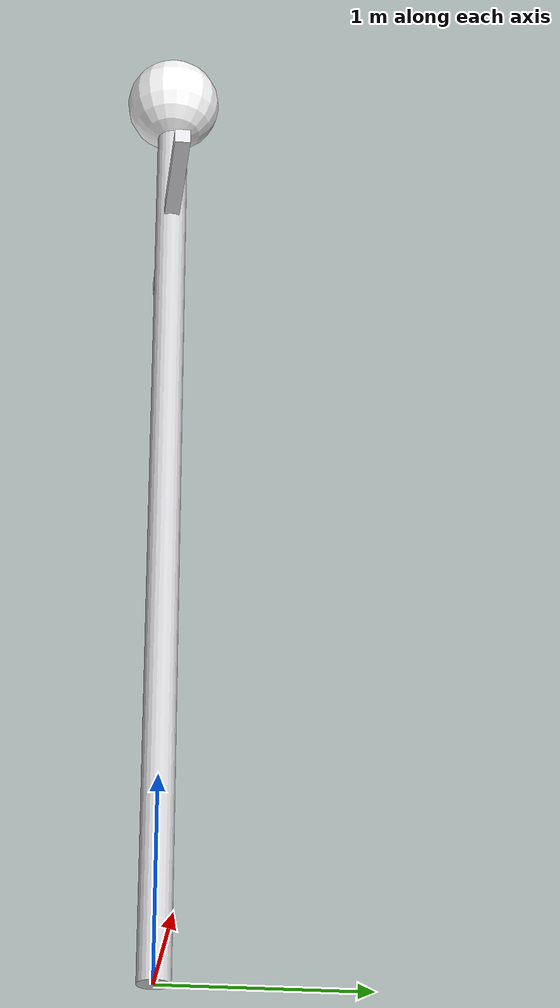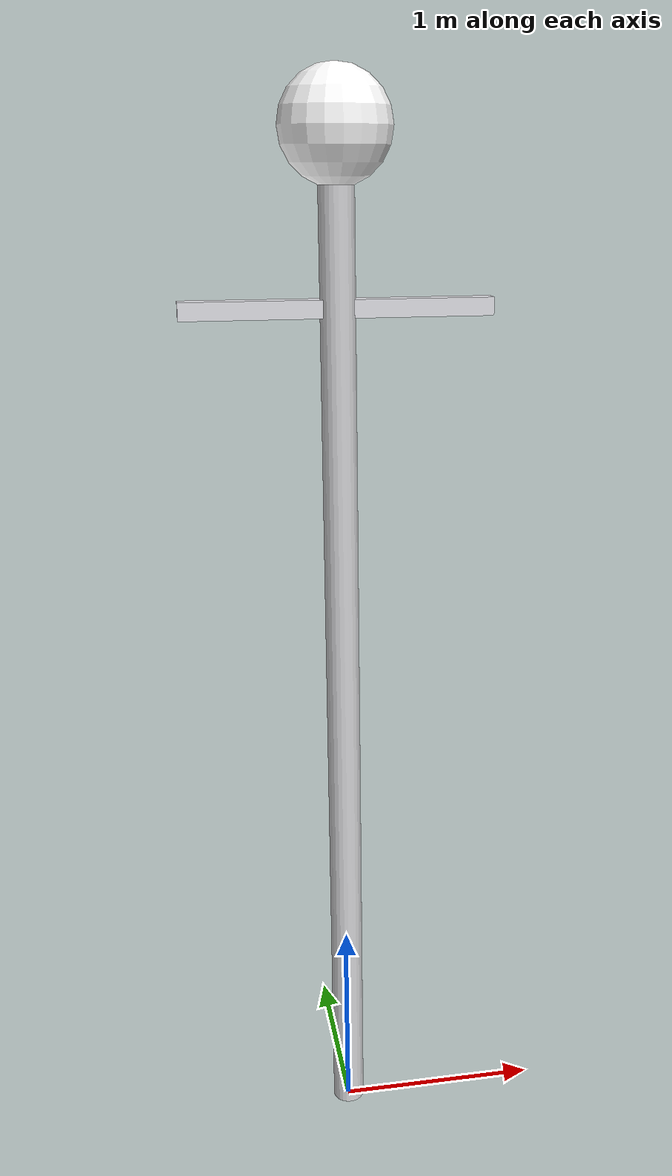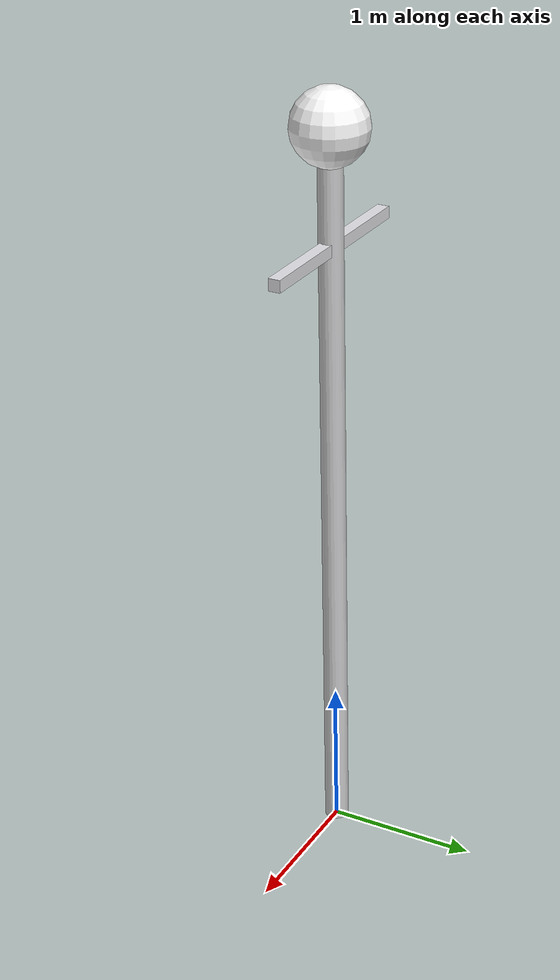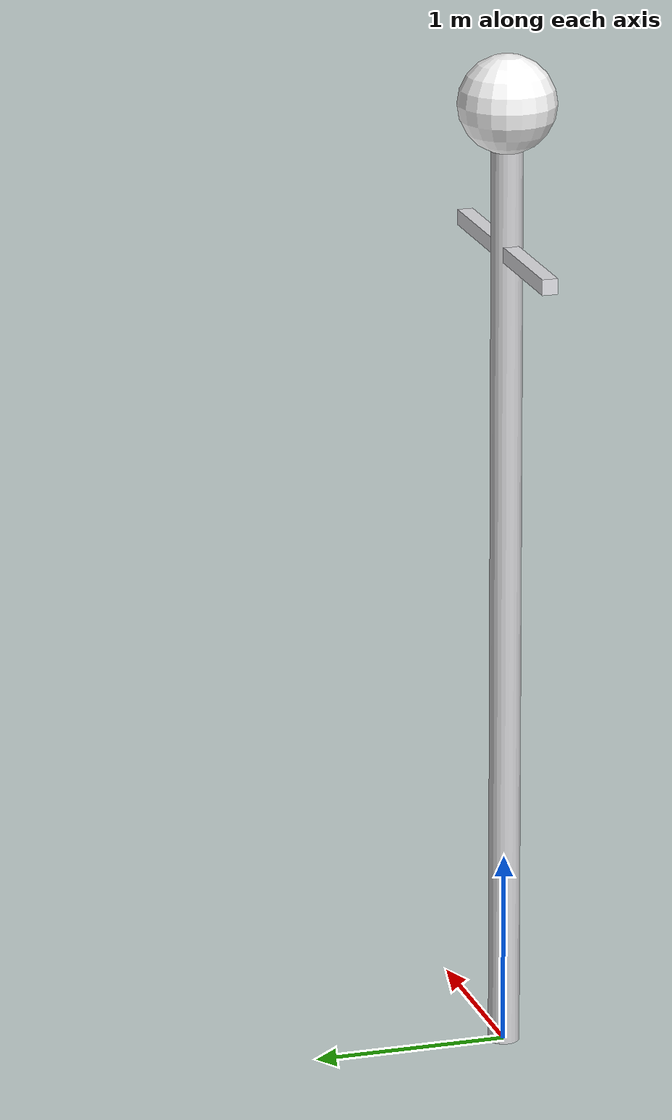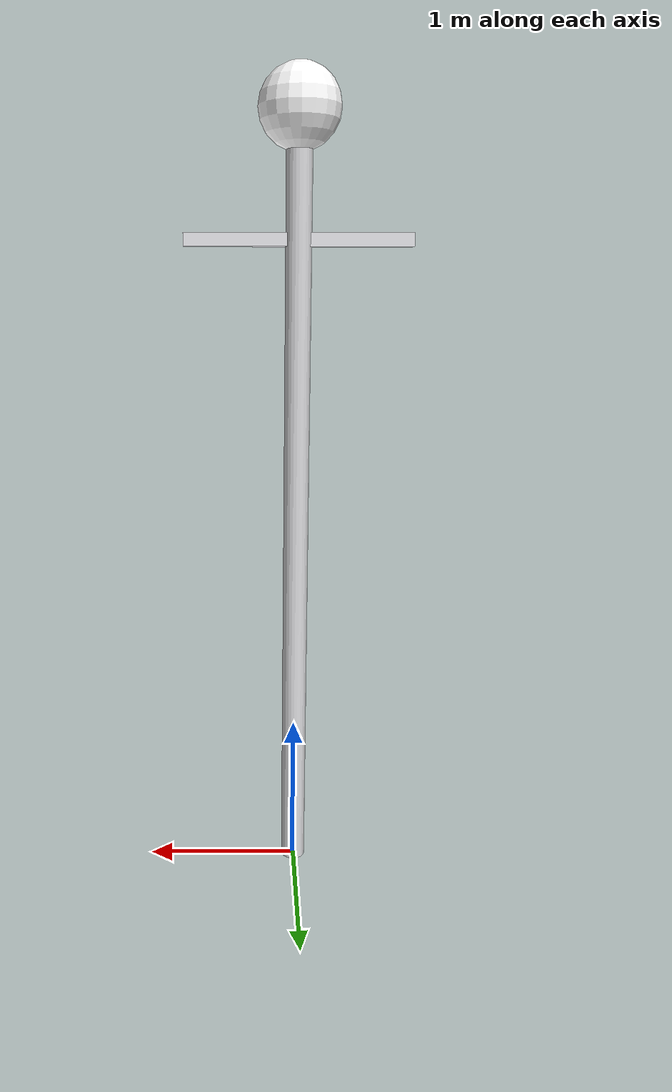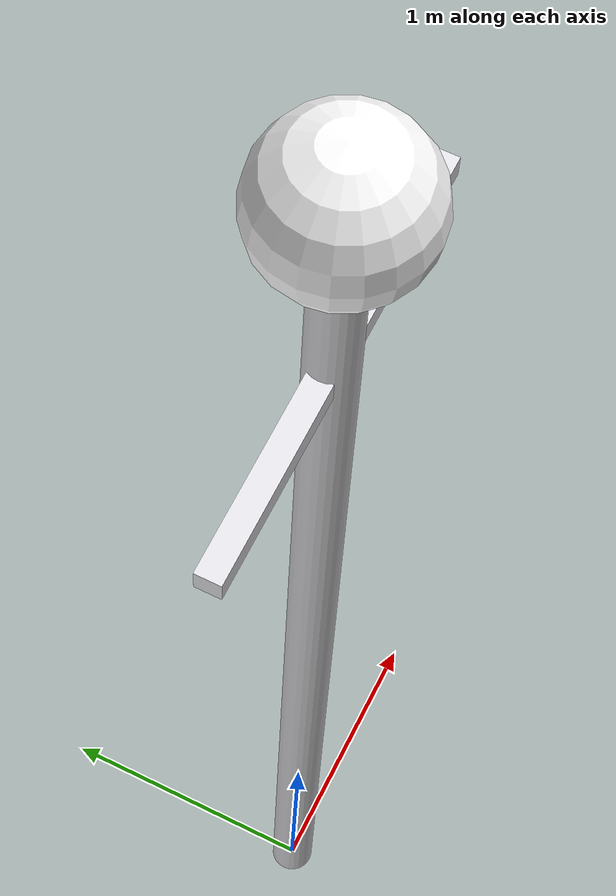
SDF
<?xml version="1.0" ?>
<sdf version="1.9">
  <model name="weather_station">
    <static>true</static>
    <link name="station_link">
      <collision name="mast_collision">
        <pose>0 0 2.4 0 0 0</pose>
        <geometry>
          <cylinder>
            <radius>0.08</radius>
            <length>4.8</length>
          </cylinder>
        </geometry>
      </collision>

      <visual name="mast_visual">
        <pose>0 0 2.4 0 0 0</pose>
        <geometry>
          <cylinder>
            <radius>0.08</radius>
            <length>4.8</length>
          </cylinder>
        </geometry>
        <material>
          <ambient>0.70 0.70 0.71 1</ambient>
          <diffuse>0.82 0.82 0.83 1</diffuse>
        </material>
      </visual>

      <visual name="sensor_head">
        <pose>0 0 4.95 0 0 0</pose>
        <geometry>
          <sphere>
            <radius>0.25</radius>
          </sphere>
        </geometry>
        <material>
          <ambient>0.94 0.94 0.94 1</ambient>
          <diffuse>0.98 0.98 0.98 1</diffuse>
        </material>
      </visual>

      <visual name="cross_arm">
        <pose>0 0 4.2 0 0 0</pose>
        <geometry>
          <box>
            <size>1.4 0.08 0.08</size>
          </box>
        </geometry>
        <material>
          <ambient>0.78 0.78 0.80 1</ambient>
          <diffuse>0.88 0.88 0.90 1</diffuse>
        </material>
      </visual>
    </link>
  </model>
</sdf>
